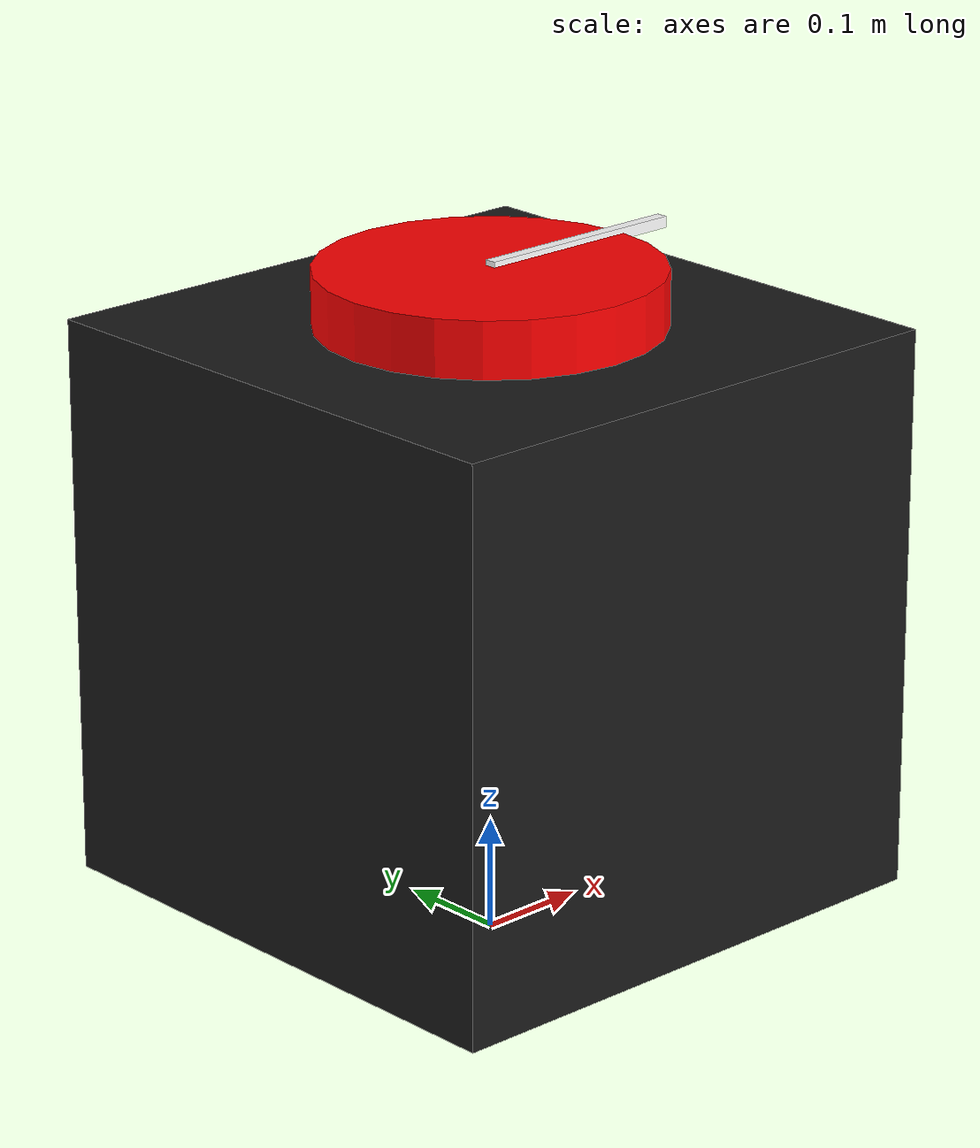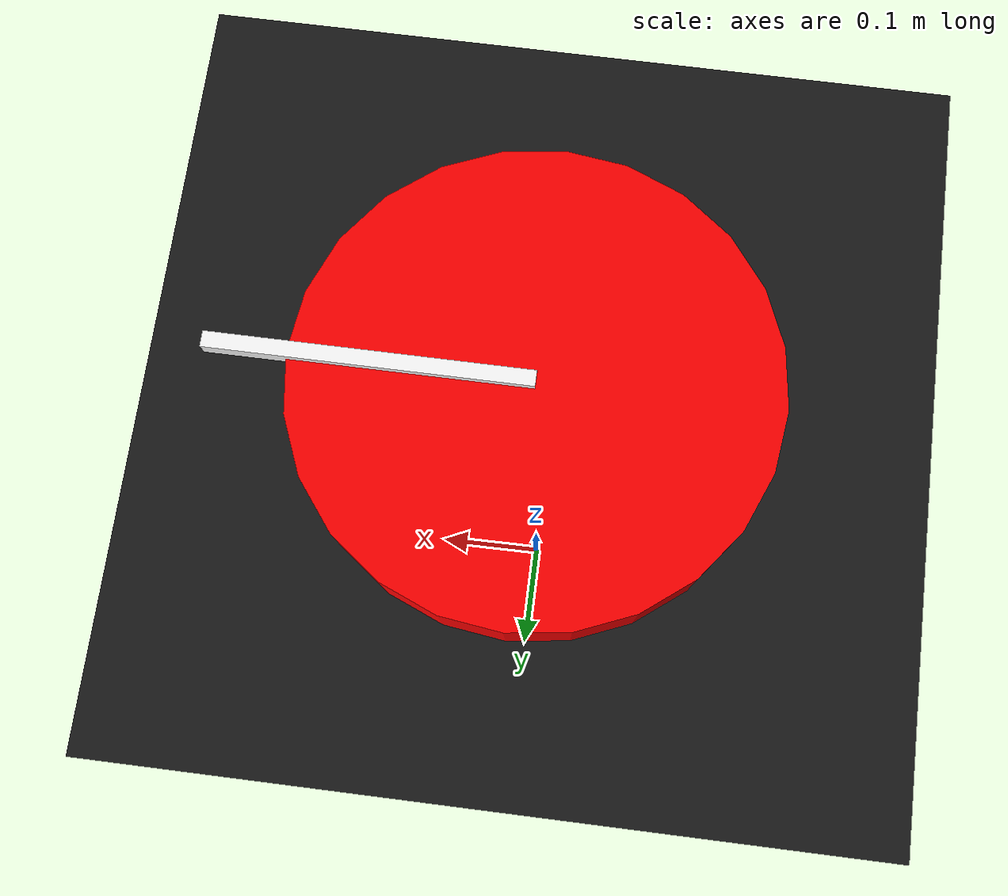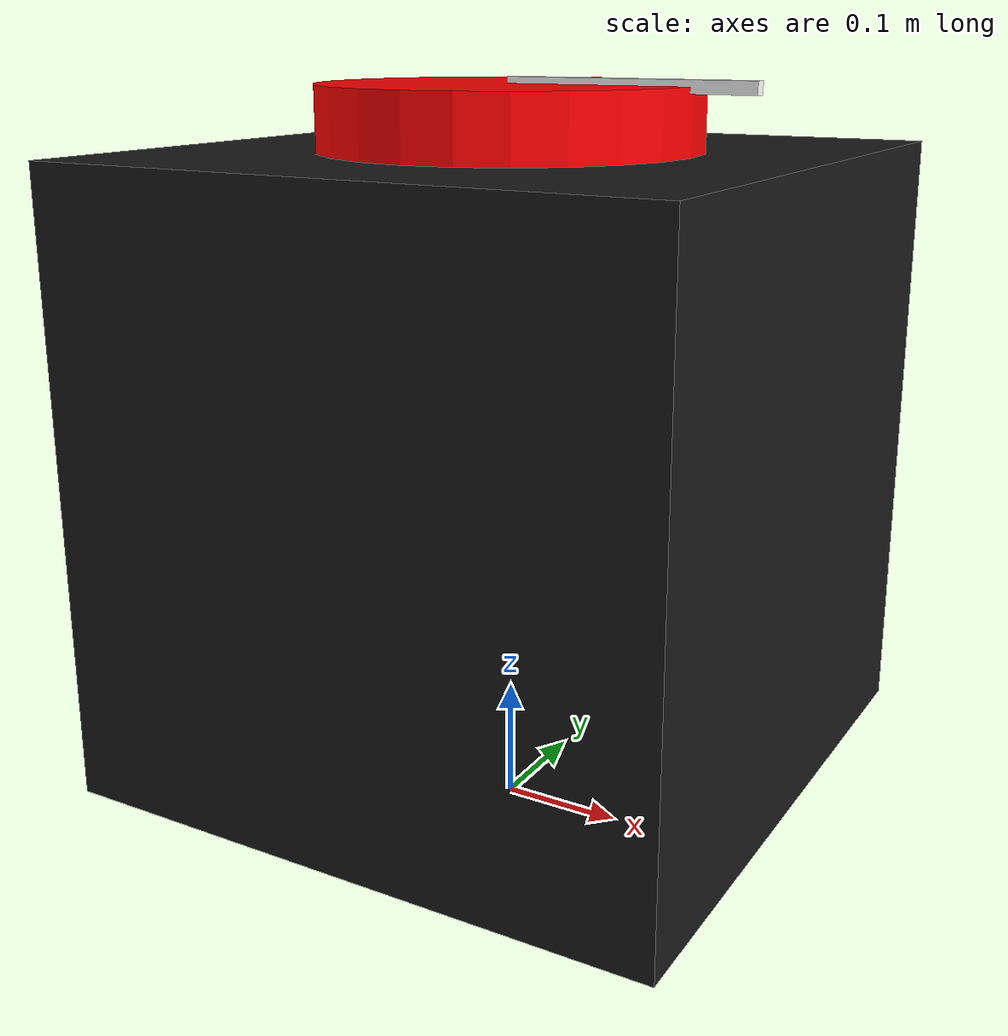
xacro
<?xml version="1.0"?>
<robot xmlns:xacro="http://www.ros.org/wiki/xacro" name="controlled_qube">
  <xacro:arg name="baud_rate" default="115200"/>
  <xacro:arg name="device" default="/dev/ttyACM0"/>
  <xacro:arg name="simulation" default="false"/>

  <xacro:include filename="$(find qube_description_mini)/urdf/qube.macro.xacro"/>
  <xacro:include filename="$(find qube_driver)/ros2_control/qube_driver.ros2_control.xacro"/>

  <link name="world"/>

  <xacro:qube prefix=""/>

  <joint name="base_to_world" type="fixed">
    <parent link="world"/>
    <child link="base_link"/>
  </joint>

  <xacro:qube_driver_ros2_control
    name="qube_driver"
    prefix=""
    baud_rate="$(arg baud_rate)"
    device="$(arg device)"
    simulation="$(arg simulation)"/>
</robot>

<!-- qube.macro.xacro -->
<robot xmlns:xacro="http://www.ros.org/wiki/xacro">

  <xacro:macro name="qube" params="prefix">

    <!-- Parametre -->
    <xacro:property name="base_size" value="0.5"/>
    <xacro:property name="disk_radius" value="0.15"/>
    <xacro:property name="disk_height" value="0.05"/>
    <xacro:property name="indicator_length" value="0.2"/>
    <xacro:property name="indicator_thickness" value="0.01"/>
    <xacro:property name="leg_height" value="0.05"/>
    <xacro:property name="leg_radius" value="0.02"/>

    <!-- Base link -->
    <link name="${prefix}base_link">
      <visual>
        <geometry>
          <box size="${base_size} ${base_size} ${base_size}"/>
        </geometry>
        <origin xyz="0 0 ${base_size/2 + leg_height}" rpy="0 0 0"/>
        <material name="black">
          <color rgba="0.1 0.1 0.1 1"/>
        </material>
      </visual>
    </link>

    <!-- Disk -->
    <link name="${prefix}disk_link">
      <visual>
        <geometry>
          <cylinder length="${disk_height}" radius="${disk_radius}"/>
        </geometry>
        <origin xyz="0 0 ${disk_height/2}" rpy="0 0 0"/>
        <material name="red">
          <color rgba="1 0 0 1"/>
        </material>
      </visual>
    </link>

    <joint name="${prefix}motor_joint" type="revolute">
      <parent link="${prefix}base_link"/>
      <child link="${prefix}disk_link"/>
      <origin xyz="0 0 ${base_size + leg_height}" rpy="0 0 0"/>
      <axis xyz="0 0 1"/>
      <limit lower="-3.14" upper="3.14" effort="1.0" velocity="1.0"/>
    </joint>

    <!-- Indikator (viser) -->
    <link name="${prefix}indicator_link">
      <visual>
        <geometry>
          <box size="${indicator_length} ${indicator_thickness} ${indicator_thickness}"/>
        </geometry>
        <origin xyz="${indicator_length/2} 0 ${disk_height/2}" rpy="0 0 0"/>
        <material name="white">
          <color rgba="1 1 1 1"/>
        </material>
      </visual>
    </link>

    <joint name="${prefix}indicator_joint" type="fixed">
      <parent link="${prefix}disk_link"/>
      <child link="${prefix}indicator_link"/>
      <origin xyz="0 0 ${disk_height/2}" rpy="0 0 0"/>
    </joint>

  </xacro:macro>

</robot>
